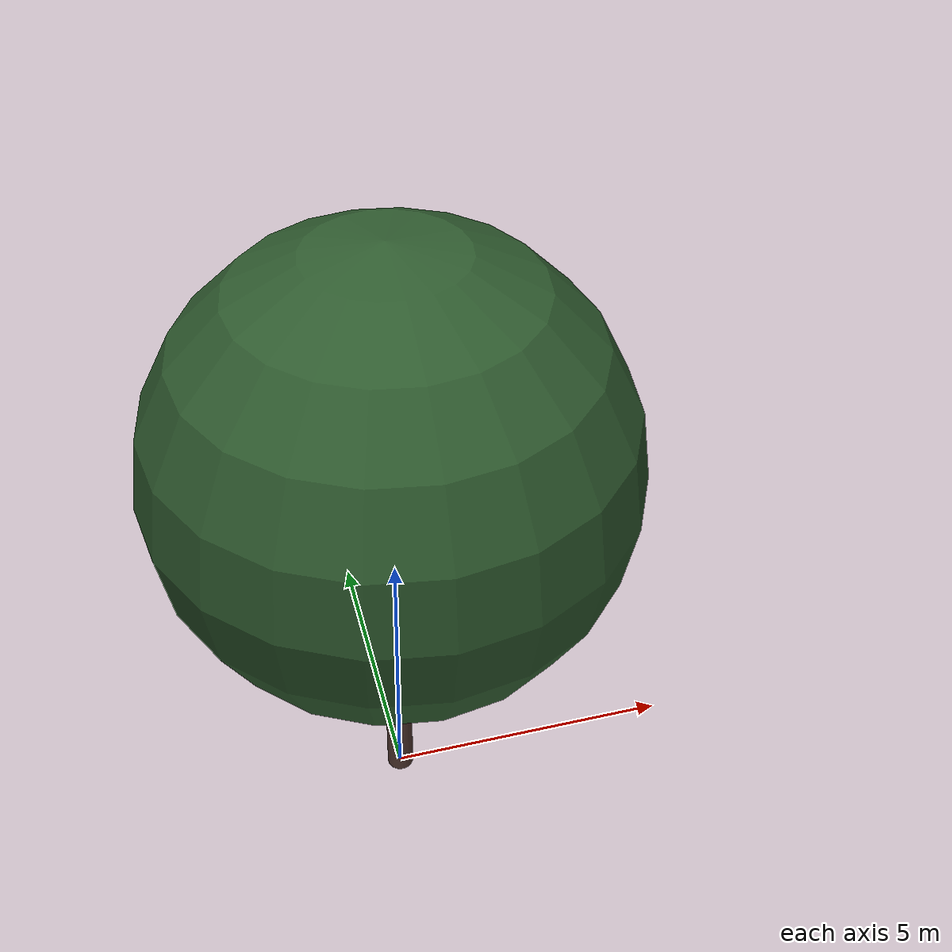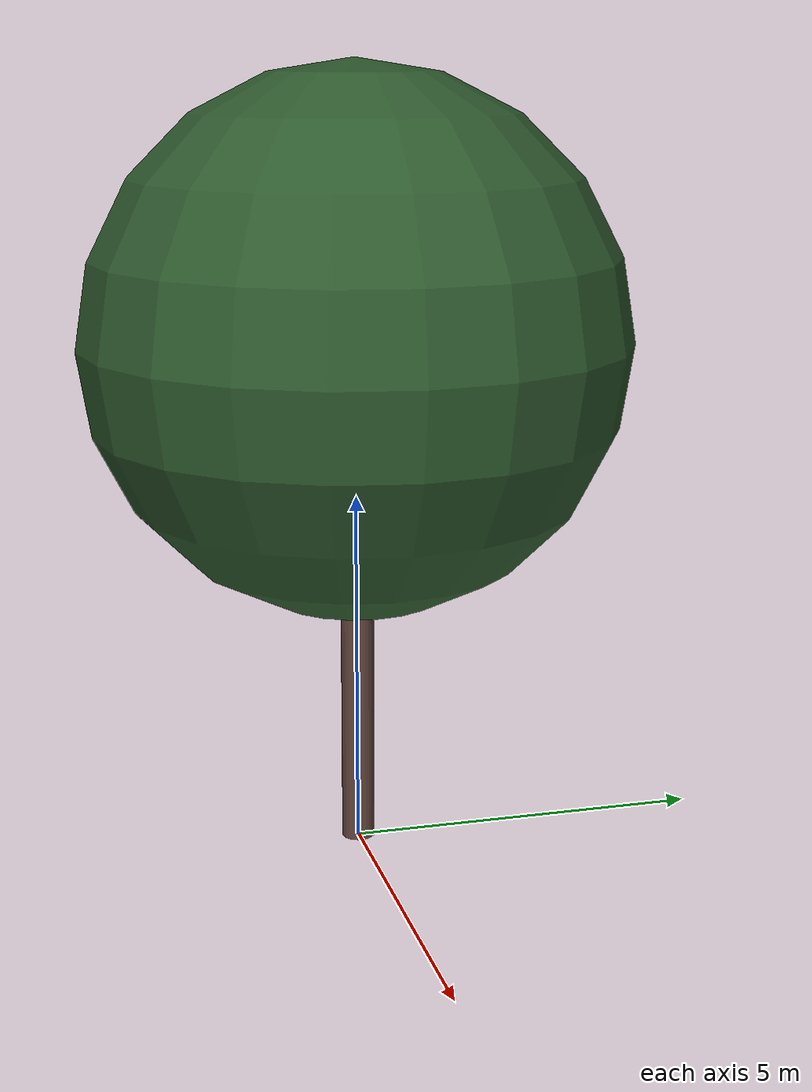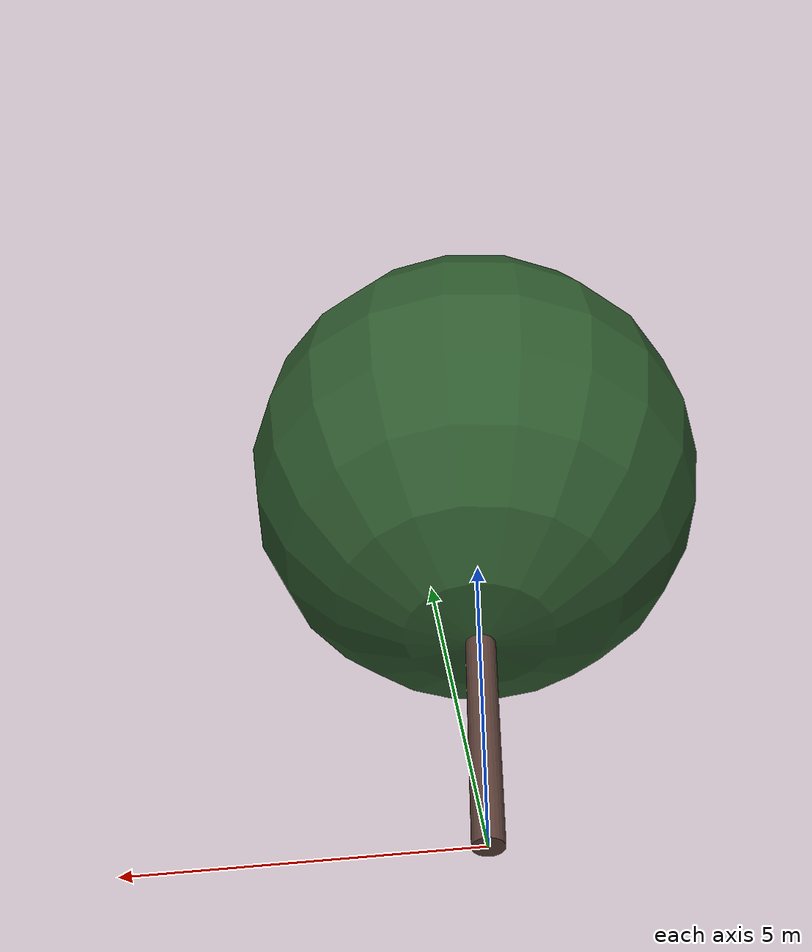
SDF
<?xml version="1.0" ?>
<sdf version="1.10">
  <model name="pin_parasol_01">
    <static>true</static>

    <!-- Tronc -->
    <link name="trunk">
      <pose>0 0 3.0191398259788853 0 0 0</pose>
      <visual name="trunk_visual">
        <geometry>
          <cylinder>
            <radius>0.22957085395046212</radius>
            <length>6.038279651957771</length>
          </cylinder>
        </geometry>
        <material>
          <ambient>0.36 0.25 0.22 1</ambient>
          <diffuse>0.36 0.25 0.22 1</diffuse>
          <specular>0.1 0.1 0.1 1</specular>
        </material>
      </visual>
      <collision name="trunk_collision">
        <geometry>
          <cylinder>
            <radius>0.22957085395046212</radius>
            <length>6.038279651957771</length>
          </cylinder>
        </geometry>
      </collision>
    </link>

    <!-- Feuillage -->
    <link name="crown">
      <pose>0 0 7.170022684878003 0 0 0</pose>
      <visual name="crown_visual">
        <geometry>
          <sphere>
              <radius>3.7724767764007754</radius>
            </sphere>
        </geometry>
        <material>
          <ambient>0.18 0.35 0.18 1</ambient>
          <diffuse>0.18 0.35 0.18 1</diffuse>
          <specular>0.1 0.1 0.1 1</specular>
        </material>
      </visual>
      <collision name="crown_collision">
        <geometry>
          <sphere>
            <radius>3.0179814211206204</radius>
          </sphere>
        </geometry>
      </collision>
    </link>

    <!-- Joint tronc-feuillage -->
    <joint name="trunk_crown_joint" type="fixed">
      <parent>trunk</parent>
      <child>crown</child>
    </joint>

  </model>
</sdf>
